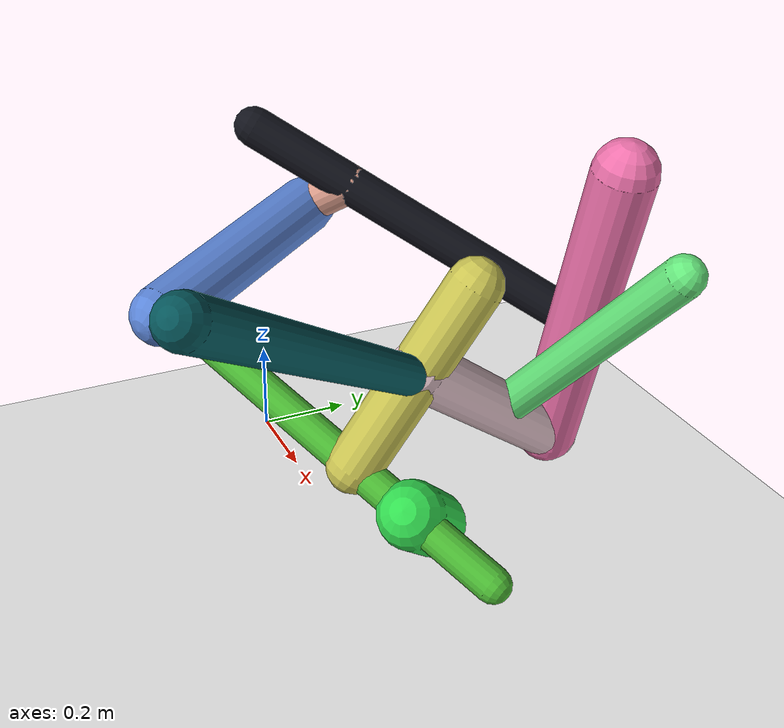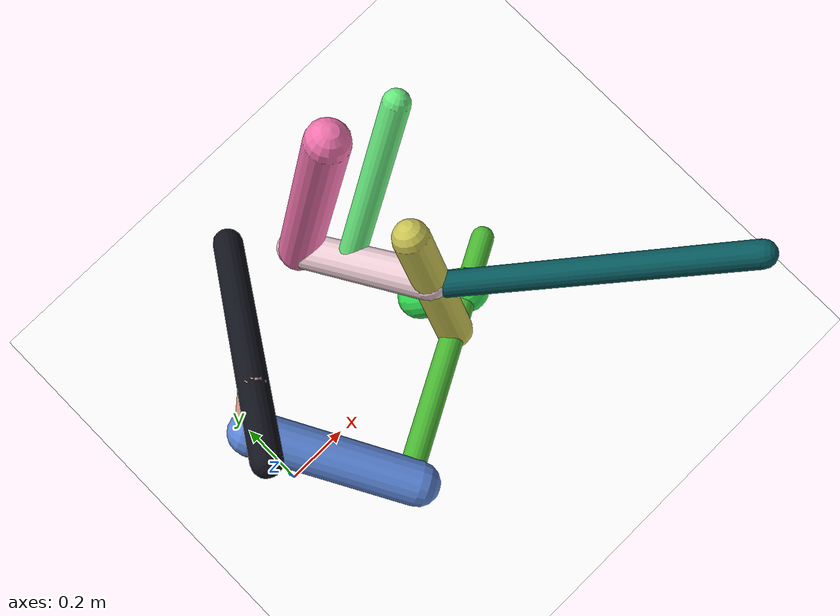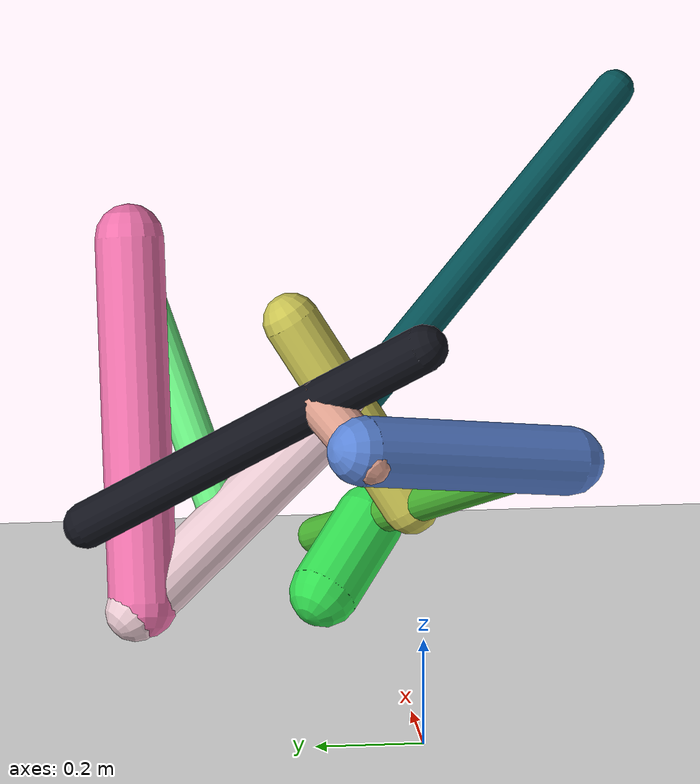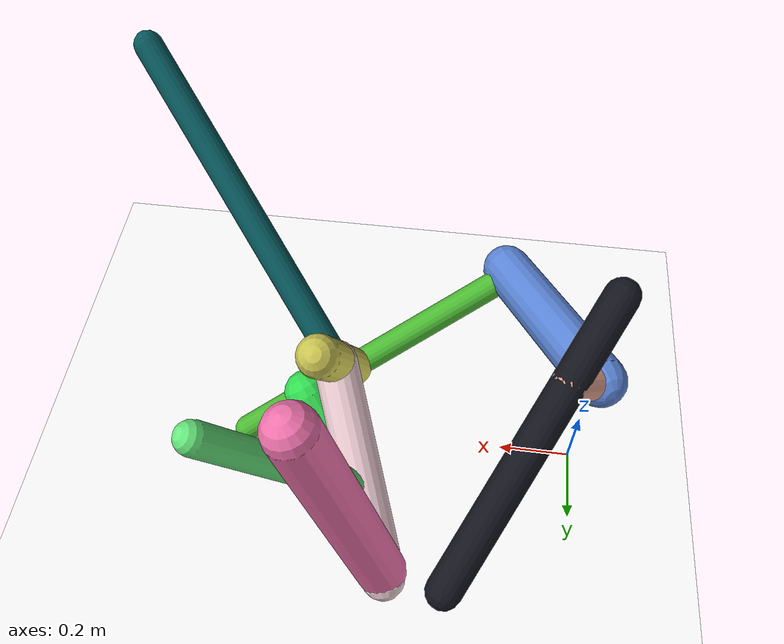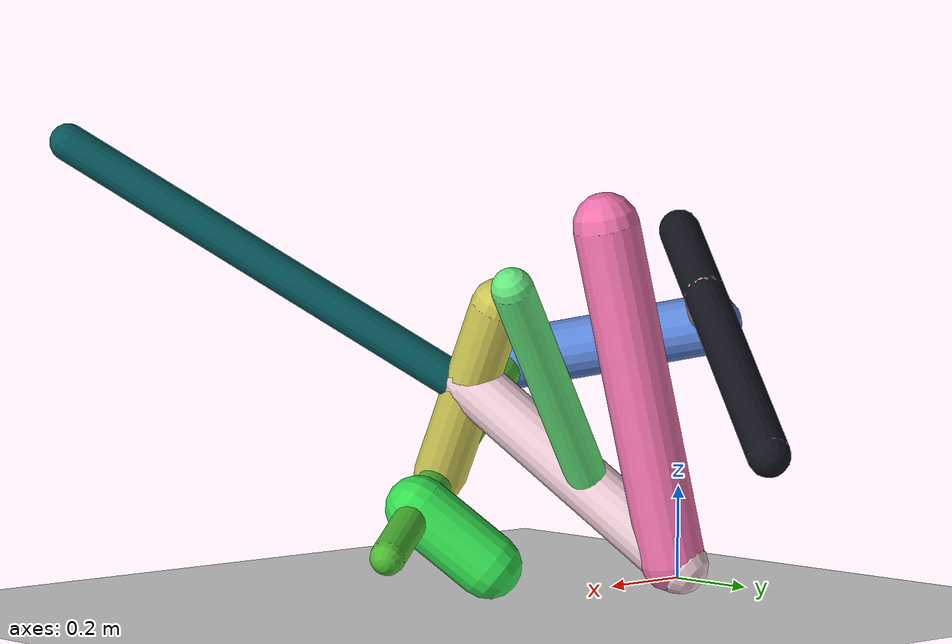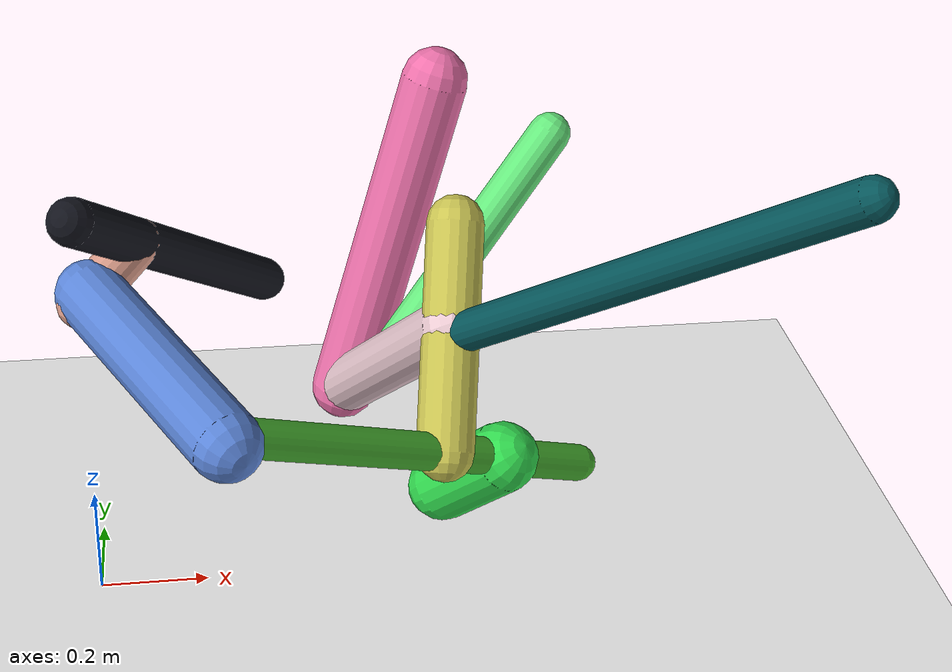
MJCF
<mujoco model="morphology">
  <option timestep="0.01"/>
  <default>
    <default class="/"/>
    <default class="0/"/>
    <default class="0/1/"/>
    <default class="0/1/2/"/>
    <default class="0/1/2/3/"/>
    <default class="0/1/2/3/4/"/>
    <default class="0/1/2/3/4/5/"/>
    <default class="0/1/2/3/4/5/6/"/>
    <default class="0/1/2/3/4/5/7/"/>
    <default class="0/1/2/3/4/8/"/>
    <default class="0/1/2/3/9/"/>
  </default>
  <asset>
    <texture name="texplane" type="2d" builtin="checker" rgb1="0.10000000000000001 0.20000000000000001 0.29999999999999999" rgb2="0.20000000000000001 0.29999999999999999 0.40000000000000002" width="300" height="300"/>
    <material name="MatPlane" class="/" texture="texplane" texrepeat="20 20" specular="1" shininess="1" reflectance="0.5"/>
  </asset>
  <worldbody>
    <light name="//unnamed_light_0" class="/" directional="true" pos="0 0 1.5" dir="0 0 -1.3" cutoff="100" exponent="1" diffuse="1 1 1" specular="0.10000000000000001 0.10000000000000001 0.10000000000000001"/>
    <geom name="ground" class="/" type="plane" size="15 15 0.5" material="MatPlane" rgba="1 1 1 1"/>
    <site name="body" class="/" size="9.9999999999999995e-07 9.9999999999999995e-07 9.9999999999999995e-07" pos="0 0 0.75195804834365843"/>
    <body pos="0 0 0.75195804834365843" name="0/">
      <freejoint name="0/"/>
      <geom name="0/geom" class="0/" type="capsule" contype="1" conaffinity="1" condim="3" size="0.044492793749174822" rgba="0.071353961950680778 0.076488677957046614 0.11134753578792489 1" friction="0.59999999999999998 0.10000000000000001 0.10000000000000001" fromto="0 0 0 0.34473718274440546 0.59581621971301324 -0.41302377729989881"/>
      <site name="0/end0" class="0/" size="0.0050000000000000001" pos="0.34473718274440546 0.59581621971301324 -0.41302377729989881"/>
      <site name="0/attach1" class="0/" size="9.9999999999999995e-07 9.9999999999999995e-07 9.9999999999999995e-07" pos="0.10374092186167432 0.17929752572989305 -0.12429024066037658"/>
      <body pos="0.10374092186167432 0.17929752572989305 -0.12429024066037658" name="0/1/">
        <joint name="0/1/joint/" class="0/" type="hinge" axis="0 1 0" limited="true" range="-46.261776447277342 46.261776447277342"/>
        <geom name="0/1/geom" class="0/1/" type="capsule" contype="1" conaffinity="1" condim="3" size="0.044759212284734881" rgba="0.85888501594267996 0.6186259178256639 0.54733127271956561 1" friction="0.59999999999999998 0.10000000000000001 0.10000000000000001" fromto="0 0 0 -0.10593561008643015 -0.080723814499979452 -0.083534936170989282"/>
        <site name="0/1/end1" class="0/1/" size="0.0050000000000000001" pos="-0.10593561008643015 -0.080723814499979452 -0.083534936170989282"/>
        <site name="0/1/attach2" class="0/1/" size="9.9999999999999995e-07 9.9999999999999995e-07 9.9999999999999995e-07" pos="-0.088595748463871166 -0.067510695965685347 -0.069861684724450479"/>
        <body pos="-0.088595748463871166 -0.067510695965685347 -0.069861684724450479" name="0/1/2/">
          <joint name="0/1/2/joint/" class="0/1/" type="hinge" axis="0.73889243678039129 -0.46824230908434095 -0.48454835347166375" limited="true" range="-42.954847782045213 42.954847782045213"/>
          <geom name="0/1/2/geom" class="0/1/2/" type="capsule" contype="1" conaffinity="1" condim="3" size="0.065022693585881239" rgba="0.35614026968433987 0.52141907170872759 0.84488964610472761 1" friction="0.59999999999999998 0.10000000000000001 0.10000000000000001" fromto="0 0 0 0.22968493121359368 -0.41271433220978099 -0.092791240265850172"/>
          <site name="0/1/2/end2" class="0/1/2/" size="0.0050000000000000001" pos="0.22968493121359368 -0.41271433220978099 -0.092791240265850172"/>
          <site name="0/1/2/attach3" class="0/1/2/" size="9.9999999999999995e-07 9.9999999999999995e-07 9.9999999999999995e-07" pos="0.21671853141397671 -0.38941537652214187 -0.087552897842461258"/>
          <body pos="0.21671853141397671 -0.38941537652214187 -0.087552897842461258" name="0/1/2/3/">
            <geom name="0/1/2/3/geom" class="0/1/2/3/" type="capsule" contype="1" conaffinity="1" condim="3" size="0.036115291305045746" rgba="0.29493575974453268 0.72435036824491883 0.2018181885194309 1" friction="0.59999999999999998 0.10000000000000001 0.10000000000000001" fromto="0 0 0 0.69607086659562989 0.38621295210927187 -0.33105089828200712"/>
            <site name="0/1/2/3/end3" class="0/1/2/3/" size="0.0050000000000000001" pos="0.69607086659562989 0.38621295210927187 -0.33105089828200712"/>
            <site name="0/1/2/3/attach4" class="0/1/2/3/" size="9.9999999999999995e-07 9.9999999999999995e-07 9.9999999999999995e-07" pos="0.41534056174038703 0.23045053625792025 -0.19753572898344862"/>
            <body pos="0.41534056174038703 0.23045053625792025 -0.19753572898344862" name="0/1/2/3/4/">
              <joint name="0/1/2/3/4/joint/" class="0/1/2/3/" type="hinge" axis="-0.59002613987445485 0.61300293760710267 -0.52544890593654592" limited="true" range="-57.449183089516211 57.449183089516211"/>
              <geom name="0/1/2/3/4/geom" class="0/1/2/3/4/" type="capsule" contype="1" conaffinity="1" condim="3" size="0.055160277915064768" rgba="0.7916553780018647 0.76651713108929742 0.32242471745574997 1" friction="0.59999999999999998 0.10000000000000001 0.10000000000000001" fromto="0 0 0 0.046472685018923876 0.22515254565573306 0.36069633809371693"/>
              <site name="0/1/2/3/4/end4" class="0/1/2/3/4/" size="0.0050000000000000001" pos="0.046472685018923876 0.22515254565573306 0.36069633809371693"/>
              <site name="0/1/2/3/4/attach5" class="0/1/2/3/4/" size="9.9999999999999995e-07 9.9999999999999995e-07 9.9999999999999995e-07" pos="0.0254528322056599 0.12331480229556264 0.19755138673302206"/>
              <body pos="0.0254528322056599 0.12331480229556264 0.19755138673302206" name="0/1/2/3/4/5/">
                <joint name="0/1/2/3/4/5/joint/" class="0/1/2/3/4/" type="hinge" axis="-0.99408018562385458 0.057531856200492004 0.092166534448078541" limited="true" range="-58.191998646264722 58.191998646264722"/>
                <geom name="0/1/2/3/4/5/geom" class="0/1/2/3/4/5/" type="capsule" contype="1" conaffinity="1" condim="3" size="0.058187852623290334" rgba="0.92498183386377386 0.79915028982871572 0.82966533921046726 1" friction="0.59999999999999998 0.10000000000000001 0.10000000000000001" fromto="0 0 0 -0.17796516966824061 0.41900259291075437 -0.3469197362989106"/>
                <site name="0/1/2/3/4/5/end5" class="0/1/2/3/4/5/" size="0.0050000000000000001" pos="-0.17796516966824061 0.41900259291075437 -0.3469197362989106"/>
                <site name="0/1/2/3/4/5/attach6" class="0/1/2/3/4/5/" size="9.9999999999999995e-07 9.9999999999999995e-07 9.9999999999999995e-07" pos="-0.1031291546959376 0.24280809162178205 -0.20103674903656743"/>
                <body pos="-0.1031291546959376 0.24280809162178205 -0.20103674903656743" name="0/1/2/3/4/5/6/">
                  <joint name="0/1/2/3/4/5/6/joint/" class="0/1/2/3/4/5/" type="hinge" axis="-0.95043086068973626 -0.23949867006706216 0.19829666180920766" limited="true" range="-66.679846603602613 66.679846603602613"/>
                  <geom name="0/1/2/3/4/5/6/geom" class="0/1/2/3/4/5/6/" type="capsule" contype="1" conaffinity="1" condim="3" size="0.041693152304675671" rgba="0.40007857958113435 0.9087918984018214 0.48767855900416224 1" friction="0.59999999999999998 0.10000000000000001 0.10000000000000001" fromto="0 0 0 0.35143901962227408 0.14593835698895263 0.42228689490795945"/>
                  <site name="0/1/2/3/4/5/6/end6" class="0/1/2/3/4/5/6/" size="0.0050000000000000001" pos="0.35143901962227408 0.14593835698895263 0.42228689490795945"/>
                </body>
                <site name="0/1/2/3/4/5/attach7" class="0/1/2/3/4/5/" size="9.9999999999999995e-07 9.9999999999999995e-07 9.9999999999999995e-07" pos="-0.17175023303767284 0.40437009730592116 -0.33480453318916531"/>
                <body pos="-0.17175023303767284 0.40437009730592116 -0.33480453318916531" name="0/1/2/3/4/5/7/">
                  <joint name="0/1/2/3/4/5/7/joint/" class="0/1/2/3/4/5/" type="hinge" axis="-5.5511151231257827e-17 0.63774114059376785 0.7702507628001154" limited="true" range="-54.807892627850919 54.807892627850919"/>
                  <geom name="0/1/2/3/4/5/7/geom" class="0/1/2/3/4/5/7/" type="capsule" contype="1" conaffinity="1" condim="3" size="0.066167904152700477" rgba="0.93419012444550009 0.44487522561113224 0.67236387142909115 1" friction="0.59999999999999998 0.10000000000000001 0.10000000000000001" fromto="0 0 0 0.19169314702293205 0.0066314107586322724 0.66926770768576649"/>
                  <site name="0/1/2/3/4/5/7/end7" class="0/1/2/3/4/5/7/" size="0.0050000000000000001" pos="0.19169314702293205 0.0066314107586322724 0.66926770768576649"/>
                </body>
              </body>
              <site name="0/1/2/3/4/attach8" class="0/1/2/3/4/" size="9.9999999999999995e-07 9.9999999999999995e-07 9.9999999999999995e-07" pos="0.023486591321006067 0.11378868732346838 0.18229046762288256"/>
              <body pos="0.023486591321006067 0.11378868732346838 0.18229046762288256" name="0/1/2/3/4/8/">
                <joint name="0/1/2/3/4/8/joint/" class="0/1/2/3/4/" type="hinge" axis="-1.1102230246251565e-16 -0.84829694765876196 0.52952081034915688" limited="true" range="-33.330434204624531 33.330434204624531"/>
                <geom name="0/1/2/3/4/8/geom" class="0/1/2/3/4/8/" type="capsule" contype="1" conaffinity="1" condim="3" size="0.038644240491063589" rgba="0.020719629410627438 0.33624624253974666 0.35470107103575865 1" friction="0.59999999999999998 0.10000000000000001 0.10000000000000001" fromto="0 0 0 0.56746591399359492 -0.58577078811000205 0.49966129476625842"/>
                <site name="0/1/2/3/4/8/end8" class="0/1/2/3/4/8/" size="0.0050000000000000001" pos="0.56746591399359492 -0.58577078811000205 0.49966129476625842"/>
              </body>
            </body>
            <site name="0/1/2/3/attach9" class="0/1/2/3/" size="9.9999999999999995e-07 9.9999999999999995e-07 9.9999999999999995e-07" pos="0.53407040311983611 0.29632745302487534 -0.25400357231351683"/>
            <body pos="0.53407040311983611 0.29632745302487534 -0.25400357231351683" name="0/1/2/3/9/">
              <joint name="0/1/2/3/9/joint/" class="0/1/2/3/" type="hinge" axis="-0.59002613987445485 0.61300293760710267 -0.52544890593654592" limited="true" range="-32.334455385718726 32.334455385718726"/>
              <geom name="0/1/2/3/9/geom" class="0/1/2/3/9/" type="capsule" contype="1" conaffinity="1" condim="3" size="0.068263482571243927" rgba="0.19686789578340846 0.86650265817493866 0.31359982674820186 1" friction="0.59999999999999998 0.10000000000000001 0.10000000000000001" fromto="0 0 0 -0.10135760146655071 0.099820837095831116 -0.11624964539823246"/>
              <site name="0/1/2/3/9/end9" class="0/1/2/3/9/" size="0.0050000000000000001" pos="-0.10135760146655071 0.099820837095831116 -0.11624964539823246"/>
            </body>
          </body>
        </body>
      </body>
      <camera name="0/iso" class="0/" mode="trackcom" pos="-2.2999999999999998 -2.2999999999999998 1" xyaxes="0.45000000000000001 -0.45000000000000001 0 0.29999999999999999 0.14999999999999999 0.93999999999999995"/>
    </body>
  </worldbody>
  <actuator>
    <motor name="0/1/motor" class="0/1/" ctrllimited="true" ctrlrange="-1 1" gear="62" joint="0/1/joint/"/>
    <motor name="0/1/2/motor" class="0/1/2/" ctrllimited="true" ctrlrange="-1 1" gear="85" joint="0/1/2/joint/"/>
    <motor name="0/1/2/3/4/motor" class="0/1/2/3/4/" ctrllimited="true" ctrlrange="-1 1" gear="94" joint="0/1/2/3/4/joint/"/>
    <motor name="0/1/2/3/4/5/motor" class="0/1/2/3/4/5/" ctrllimited="true" ctrlrange="-1 1" gear="93" joint="0/1/2/3/4/5/joint/"/>
    <motor name="0/1/2/3/4/5/6/motor" class="0/1/2/3/4/5/6/" ctrllimited="true" ctrlrange="-1 1" gear="50" joint="0/1/2/3/4/5/6/joint/"/>
    <motor name="0/1/2/3/4/5/7/motor" class="0/1/2/3/4/5/7/" ctrllimited="true" ctrlrange="-1 1" gear="63" joint="0/1/2/3/4/5/7/joint/"/>
    <motor name="0/1/2/3/4/8/motor" class="0/1/2/3/4/8/" ctrllimited="true" ctrlrange="-1 1" gear="74" joint="0/1/2/3/4/8/joint/"/>
    <motor name="0/1/2/3/9/motor" class="0/1/2/3/9/" ctrllimited="true" ctrlrange="-1 1" gear="70" joint="0/1/2/3/9/joint/"/>
  </actuator>
  <sensor>
    <subtreelinvel name="velocity" body="0/"/>
  </sensor>
</mujoco>
